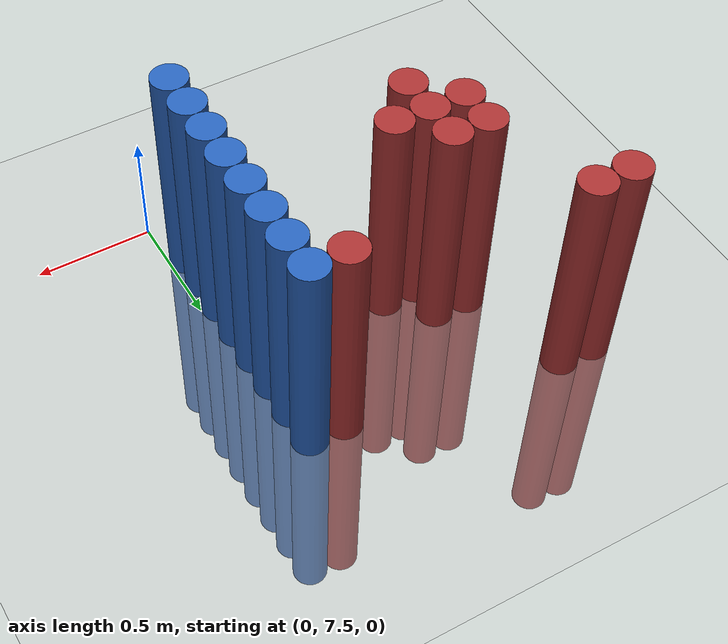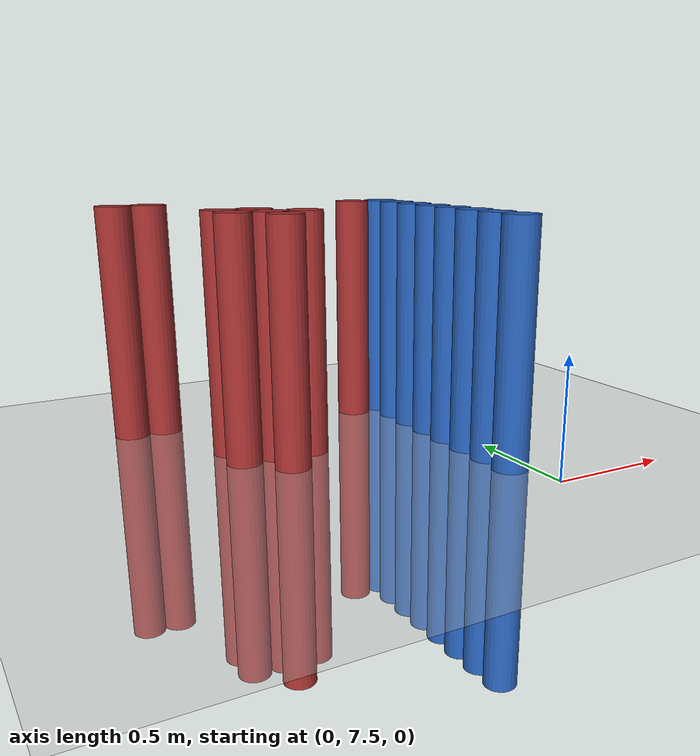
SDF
<sdf version="1.6">
 <world name="default">
  <model name="ground_plane">
   <static>1</static>
   <link name="link">
    <collision name="collision">
     <geometry><plane><normal>0 0 1</normal><size>100 100</size></plane></geometry>
     <surface><friction><ode><mu>100</mu><mu2>50</mu2></ode></friction></surface>
    </collision>
    <visual name="visual">
     <cast_shadows>0</cast_shadows>
     <geometry><plane><normal>0 0 1</normal><size>100 100</size></plane></geometry>
     <material>
      <script><uri>file://media/materials/scripts/gazebo.material</uri><name>Gazebo/Grey</name></script>
     </material>
    </visual>
   </link>
  </model>
  <model name="unit_cylinder_199">
   <static>1</static>
   <pose>-1.275000 8.925000 0.000000 0.000000 0.000000 0.000000</pose>
   <link name="link">
    <inertial>
     <mass>1</mass>
     <inertia><ixx>0.145833</ixx><ixy>0</ixy><ixz>0</ixz><iyy>0.145833</iyy><iyz>0</iyz><izz>0.125</izz></inertia>
    </inertial>
    <collision name="collision">
     <geometry><cylinder><radius>0.075000</radius><length>2</length></cylinder></geometry>
    </collision>
    <visual name="visual">
     <geometry><cylinder><radius>0.075000</radius><length>2</length></cylinder></geometry>
     <material>
      <ambient>0.648000 0.192000 0.192000 1</ambient>
      <diffuse>0.648000 0.192000 0.192000 1</diffuse>
     </material>
     <material>
      <script><name>Gazebo/Grey</name><uri>file://media/materials/scripts/gazebo.material</uri></script>
     </material>
    </visual>
   </link>
  </model>
  <model name="unit_cylinder_206">
   <static>1</static>
   <pose>-1.125000 8.925000 0.000000 0.000000 0.000000 0.000000</pose>
   <link name="link">
    <inertial>
     <mass>1</mass>
     <inertia><ixx>0.145833</ixx><ixy>0</ixy><ixz>0</ixz><iyy>0.145833</iyy><iyz>0</iyz><izz>0.125</izz></inertia>
    </inertial>
    <collision name="collision">
     <geometry><cylinder><radius>0.075000</radius><length>2</length></cylinder></geometry>
    </collision>
    <visual name="visual">
     <geometry><cylinder><radius>0.075000</radius><length>2</length></cylinder></geometry>
     <material>
      <ambient>0.648000 0.192000 0.192000 1</ambient>
      <diffuse>0.648000 0.192000 0.192000 1</diffuse>
     </material>
     <material>
      <script><name>Gazebo/Grey</name><uri>file://media/materials/scripts/gazebo.material</uri></script>
     </material>
    </visual>
   </link>
  </model>
  <model name="unit_cylinder_213">
   <static>1</static>
   <pose>-0.975000 8.325000 0.000000 0.000000 0.000000 0.000000</pose>
   <link name="link">
    <inertial>
     <mass>1</mass>
     <inertia><ixx>0.145833</ixx><ixy>0</ixy><ixz>0</ixz><iyy>0.145833</iyy><iyz>0</iyz><izz>0.125</izz></inertia>
    </inertial>
    <collision name="collision">
     <geometry><cylinder><radius>0.075000</radius><length>2</length></cylinder></geometry>
    </collision>
    <visual name="visual">
     <geometry><cylinder><radius>0.075000</radius><length>2</length></cylinder></geometry>
     <material>
      <ambient>0.648000 0.192000 0.192000 1</ambient>
      <diffuse>0.648000 0.192000 0.192000 1</diffuse>
     </material>
     <material>
      <script><name>Gazebo/Grey</name><uri>file://media/materials/scripts/gazebo.material</uri></script>
     </material>
    </visual>
   </link>
  </model>
  <model name="unit_cylinder_214">
   <static>1</static>
   <pose>-0.975000 8.475000 0.000000 0.000000 0.000000 0.000000</pose>
   <link name="link">
    <inertial>
     <mass>1</mass>
     <inertia><ixx>0.145833</ixx><ixy>0</ixy><ixz>0</ixz><iyy>0.145833</iyy><iyz>0</iyz><izz>0.125</izz></inertia>
    </inertial>
    <collision name="collision">
     <geometry><cylinder><radius>0.075000</radius><length>2</length></cylinder></geometry>
    </collision>
    <visual name="visual">
     <geometry><cylinder><radius>0.075000</radius><length>2</length></cylinder></geometry>
     <material>
      <ambient>0.648000 0.192000 0.192000 1</ambient>
      <diffuse>0.648000 0.192000 0.192000 1</diffuse>
     </material>
     <material>
      <script><name>Gazebo/Grey</name><uri>file://media/materials/scripts/gazebo.material</uri></script>
     </material>
    </visual>
   </link>
  </model>
  <model name="unit_cylinder_217">
   <static>1</static>
   <pose>-0.825000 8.175000 0.000000 0.000000 0.000000 0.000000</pose>
   <link name="link">
    <inertial>
     <mass>1</mass>
     <inertia><ixx>0.145833</ixx><ixy>0</ixy><ixz>0</ixz><iyy>0.145833</iyy><iyz>0</iyz><izz>0.125</izz></inertia>
    </inertial>
    <collision name="collision">
     <geometry><cylinder><radius>0.075000</radius><length>2</length></cylinder></geometry>
    </collision>
    <visual name="visual">
     <geometry><cylinder><radius>0.075000</radius><length>2</length></cylinder></geometry>
     <material>
      <ambient>0.648000 0.192000 0.192000 1</ambient>
      <diffuse>0.648000 0.192000 0.192000 1</diffuse>
     </material>
     <material>
      <script><name>Gazebo/Grey</name><uri>file://media/materials/scripts/gazebo.material</uri></script>
     </material>
    </visual>
   </link>
  </model>
  <model name="unit_cylinder_218">
   <static>1</static>
   <pose>-0.825000 8.325000 0.000000 0.000000 0.000000 0.000000</pose>
   <link name="link">
    <inertial>
     <mass>1</mass>
     <inertia><ixx>0.145833</ixx><ixy>0</ixy><ixz>0</ixz><iyy>0.145833</iyy><iyz>0</iyz><izz>0.125</izz></inertia>
    </inertial>
    <collision name="collision">
     <geometry><cylinder><radius>0.075000</radius><length>2</length></cylinder></geometry>
    </collision>
    <visual name="visual">
     <geometry><cylinder><radius>0.075000</radius><length>2</length></cylinder></geometry>
     <material>
      <ambient>0.648000 0.192000 0.192000 1</ambient>
      <diffuse>0.648000 0.192000 0.192000 1</diffuse>
     </material>
     <material>
      <script><name>Gazebo/Grey</name><uri>file://media/materials/scripts/gazebo.material</uri></script>
     </material>
    </visual>
   </link>
  </model>
  <model name="unit_cylinder_219">
   <static>1</static>
   <pose>-0.825000 8.475000 0.000000 0.000000 0.000000 0.000000</pose>
   <link name="link">
    <inertial>
     <mass>1</mass>
     <inertia><ixx>0.145833</ixx><ixy>0</ixy><ixz>0</ixz><iyy>0.145833</iyy><iyz>0</iyz><izz>0.125</izz></inertia>
    </inertial>
    <collision name="collision">
     <geometry><cylinder><radius>0.075000</radius><length>2</length></cylinder></geometry>
    </collision>
    <visual name="visual">
     <geometry><cylinder><radius>0.075000</radius><length>2</length></cylinder></geometry>
     <material>
      <ambient>0.648000 0.192000 0.192000 1</ambient>
      <diffuse>0.648000 0.192000 0.192000 1</diffuse>
     </material>
     <material>
      <script><name>Gazebo/Grey</name><uri>file://media/materials/scripts/gazebo.material</uri></script>
     </material>
    </visual>
   </link>
  </model>
  <model name="unit_cylinder_221">
   <static>1</static>
   <pose>-0.675000 8.325000 0.000000 0.000000 0.000000 0.000000</pose>
   <link name="link">
    <inertial>
     <mass>1</mass>
     <inertia><ixx>0.145833</ixx><ixy>0</ixy><ixz>0</ixz><iyy>0.145833</iyy><iyz>0</iyz><izz>0.125</izz></inertia>
    </inertial>
    <collision name="collision">
     <geometry><cylinder><radius>0.075000</radius><length>2</length></cylinder></geometry>
    </collision>
    <visual name="visual">
     <geometry><cylinder><radius>0.075000</radius><length>2</length></cylinder></geometry>
     <material>
      <ambient>0.648000 0.192000 0.192000 1</ambient>
      <diffuse>0.648000 0.192000 0.192000 1</diffuse>
     </material>
     <material>
      <script><name>Gazebo/Grey</name><uri>file://media/materials/scripts/gazebo.material</uri></script>
     </material>
    </visual>
   </link>
  </model>
  <model name="unit_cylinder_237">
   <static>1</static>
   <pose>-0.225000 8.775000 0.000000 0.000000 0.000000 0.000000</pose>
   <link name="link">
    <inertial>
     <mass>1</mass>
     <inertia><ixx>0.145833</ixx><ixy>0</ixy><ixz>0</ixz><iyy>0.145833</iyy><iyz>0</iyz><izz>0.125</izz></inertia>
    </inertial>
    <collision name="collision">
     <geometry><cylinder><radius>0.075000</radius><length>2</length></cylinder></geometry>
    </collision>
    <visual name="visual">
     <geometry><cylinder><radius>0.075000</radius><length>2</length></cylinder></geometry>
     <material>
      <ambient>0.648000 0.192000 0.192000 1</ambient>
      <diffuse>0.648000 0.192000 0.192000 1</diffuse>
     </material>
     <material>
      <script><name>Gazebo/Grey</name><uri>file://media/materials/scripts/gazebo.material</uri></script>
     </material>
    </visual>
   </link>
  </model>
  <model name="unit_cylinder_256">
   <static>1</static>
   <pose>-0.075000 7.725000 0.000000 0.000000 0.000000 0.000000</pose>
   <link name="link">
    <inertial>
     <mass>1</mass>
     <inertia><ixx>0.145833</ixx><ixy>0</ixy><ixz>0</ixz><iyy>0.145833</iyy><iyz>0</iyz><izz>0.125</izz></inertia>
    </inertial>
    <collision name="collision">
     <geometry><cylinder><radius>0.075000</radius><length>2</length></cylinder></geometry>
    </collision>
    <visual name="visual">
     <geometry><cylinder><radius>0.075000</radius><length>2</length></cylinder></geometry>
     <material>
      <ambient>0.152000 0.379000 0.720000 1</ambient>
      <diffuse>0.152000 0.379000 0.720000 1</diffuse>
     </material>
     <material>
      <script><name>Gazebo/Grey</name><uri>file://media/materials/scripts/gazebo.material</uri></script>
     </material>
    </visual>
   </link>
  </model>
  <model name="unit_cylinder_257">
   <static>1</static>
   <pose>-0.075000 7.875000 0.000000 0.000000 0.000000 0.000000</pose>
   <link name="link">
    <inertial>
     <mass>1</mass>
     <inertia><ixx>0.145833</ixx><ixy>0</ixy><ixz>0</ixz><iyy>0.145833</iyy><iyz>0</iyz><izz>0.125</izz></inertia>
    </inertial>
    <collision name="collision">
     <geometry><cylinder><radius>0.075000</radius><length>2</length></cylinder></geometry>
    </collision>
    <visual name="visual">
     <geometry><cylinder><radius>0.075000</radius><length>2</length></cylinder></geometry>
     <material>
      <ambient>0.152000 0.379000 0.720000 1</ambient>
      <diffuse>0.152000 0.379000 0.720000 1</diffuse>
     </material>
     <material>
      <script><name>Gazebo/Grey</name><uri>file://media/materials/scripts/gazebo.material</uri></script>
     </material>
    </visual>
   </link>
  </model>
  <model name="unit_cylinder_258">
   <static>1</static>
   <pose>-0.075000 8.025000 0.000000 0.000000 0.000000 0.000000</pose>
   <link name="link">
    <inertial>
     <mass>1</mass>
     <inertia><ixx>0.145833</ixx><ixy>0</ixy><ixz>0</ixz><iyy>0.145833</iyy><iyz>0</iyz><izz>0.125</izz></inertia>
    </inertial>
    <collision name="collision">
     <geometry><cylinder><radius>0.075000</radius><length>2</length></cylinder></geometry>
    </collision>
    <visual name="visual">
     <geometry><cylinder><radius>0.075000</radius><length>2</length></cylinder></geometry>
     <material>
      <ambient>0.152000 0.379000 0.720000 1</ambient>
      <diffuse>0.152000 0.379000 0.720000 1</diffuse>
     </material>
     <material>
      <script><name>Gazebo/Grey</name><uri>file://media/materials/scripts/gazebo.material</uri></script>
     </material>
    </visual>
   </link>
  </model>
  <model name="unit_cylinder_259">
   <static>1</static>
   <pose>-0.075000 8.175000 0.000000 0.000000 0.000000 0.000000</pose>
   <link name="link">
    <inertial>
     <mass>1</mass>
     <inertia><ixx>0.145833</ixx><ixy>0</ixy><ixz>0</ixz><iyy>0.145833</iyy><iyz>0</iyz><izz>0.125</izz></inertia>
    </inertial>
    <collision name="collision">
     <geometry><cylinder><radius>0.075000</radius><length>2</length></cylinder></geometry>
    </collision>
    <visual name="visual">
     <geometry><cylinder><radius>0.075000</radius><length>2</length></cylinder></geometry>
     <material>
      <ambient>0.152000 0.379000 0.720000 1</ambient>
      <diffuse>0.152000 0.379000 0.720000 1</diffuse>
     </material>
     <material>
      <script><name>Gazebo/Grey</name><uri>file://media/materials/scripts/gazebo.material</uri></script>
     </material>
    </visual>
   </link>
  </model>
  <model name="unit_cylinder_260">
   <static>1</static>
   <pose>-0.075000 8.325000 0.000000 0.000000 0.000000 0.000000</pose>
   <link name="link">
    <inertial>
     <mass>1</mass>
     <inertia><ixx>0.145833</ixx><ixy>0</ixy><ixz>0</ixz><iyy>0.145833</iyy><iyz>0</iyz><izz>0.125</izz></inertia>
    </inertial>
    <collision name="collision">
     <geometry><cylinder><radius>0.075000</radius><length>2</length></cylinder></geometry>
    </collision>
    <visual name="visual">
     <geometry><cylinder><radius>0.075000</radius><length>2</length></cylinder></geometry>
     <material>
      <ambient>0.152000 0.379000 0.720000 1</ambient>
      <diffuse>0.152000 0.379000 0.720000 1</diffuse>
     </material>
     <material>
      <script><name>Gazebo/Grey</name><uri>file://media/materials/scripts/gazebo.material</uri></script>
     </material>
    </visual>
   </link>
  </model>
  <model name="unit_cylinder_261">
   <static>1</static>
   <pose>-0.075000 8.475000 0.000000 0.000000 0.000000 0.000000</pose>
   <link name="link">
    <inertial>
     <mass>1</mass>
     <inertia><ixx>0.145833</ixx><ixy>0</ixy><ixz>0</ixz><iyy>0.145833</iyy><iyz>0</iyz><izz>0.125</izz></inertia>
    </inertial>
    <collision name="collision">
     <geometry><cylinder><radius>0.075000</radius><length>2</length></cylinder></geometry>
    </collision>
    <visual name="visual">
     <geometry><cylinder><radius>0.075000</radius><length>2</length></cylinder></geometry>
     <material>
      <ambient>0.152000 0.379000 0.720000 1</ambient>
      <diffuse>0.152000 0.379000 0.720000 1</diffuse>
     </material>
     <material>
      <script><name>Gazebo/Grey</name><uri>file://media/materials/scripts/gazebo.material</uri></script>
     </material>
    </visual>
   </link>
  </model>
  <model name="unit_cylinder_262">
   <static>1</static>
   <pose>-0.075000 8.625000 0.000000 0.000000 0.000000 0.000000</pose>
   <link name="link">
    <inertial>
     <mass>1</mass>
     <inertia><ixx>0.145833</ixx><ixy>0</ixy><ixz>0</ixz><iyy>0.145833</iyy><iyz>0</iyz><izz>0.125</izz></inertia>
    </inertial>
    <collision name="collision">
     <geometry><cylinder><radius>0.075000</radius><length>2</length></cylinder></geometry>
    </collision>
    <visual name="visual">
     <geometry><cylinder><radius>0.075000</radius><length>2</length></cylinder></geometry>
     <material>
      <ambient>0.152000 0.379000 0.720000 1</ambient>
      <diffuse>0.152000 0.379000 0.720000 1</diffuse>
     </material>
     <material>
      <script><name>Gazebo/Grey</name><uri>file://media/materials/scripts/gazebo.material</uri></script>
     </material>
    </visual>
   </link>
  </model>
  <model name="unit_cylinder_263">
   <static>1</static>
   <pose>-0.075000 8.775000 0.000000 0.000000 0.000000 0.000000</pose>
   <link name="link">
    <inertial>
     <mass>1</mass>
     <inertia><ixx>0.145833</ixx><ixy>0</ixy><ixz>0</ixz><iyy>0.145833</iyy><iyz>0</iyz><izz>0.125</izz></inertia>
    </inertial>
    <collision name="collision">
     <geometry><cylinder><radius>0.075000</radius><length>2</length></cylinder></geometry>
    </collision>
    <visual name="visual">
     <geometry><cylinder><radius>0.075000</radius><length>2</length></cylinder></geometry>
     <material>
      <ambient>0.152000 0.379000 0.720000 1</ambient>
      <diffuse>0.152000 0.379000 0.720000 1</diffuse>
     </material>
     <material>
      <script><name>Gazebo/Grey</name><uri>file://media/materials/scripts/gazebo.material</uri></script>
     </material>
    </visual>
   </link>
  </model>
 </world>
</sdf>
